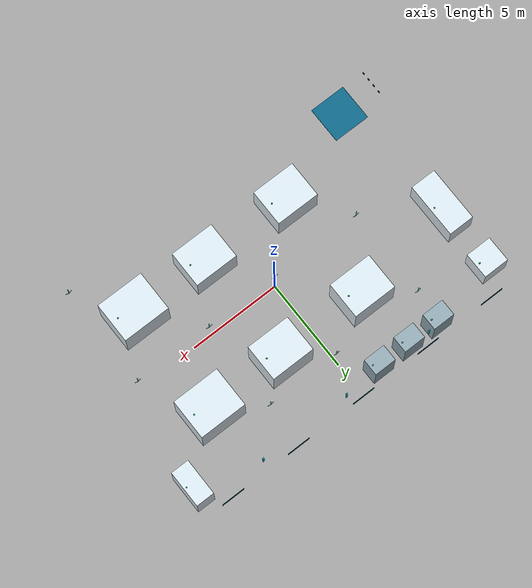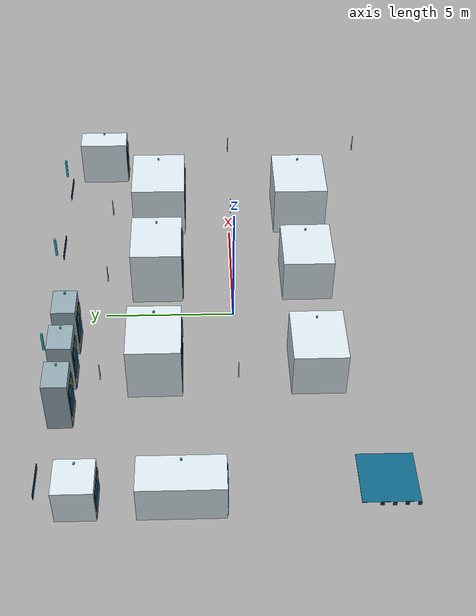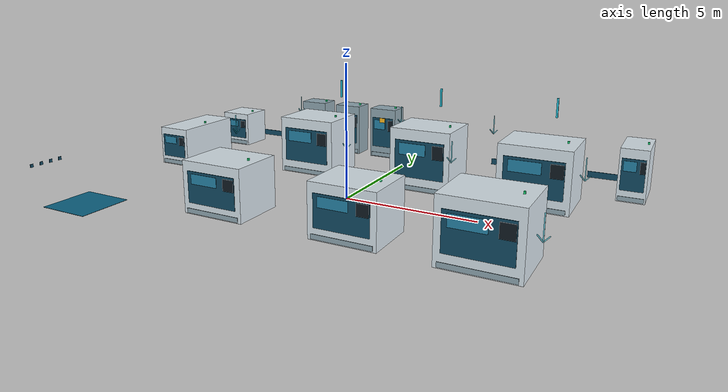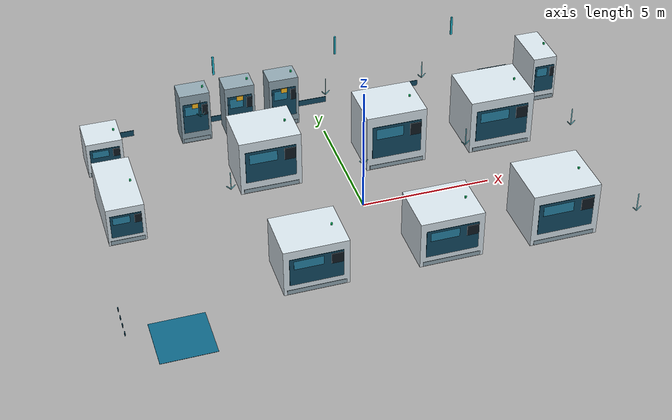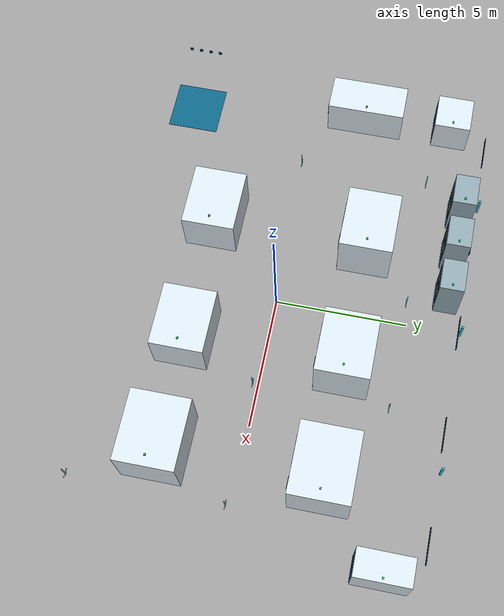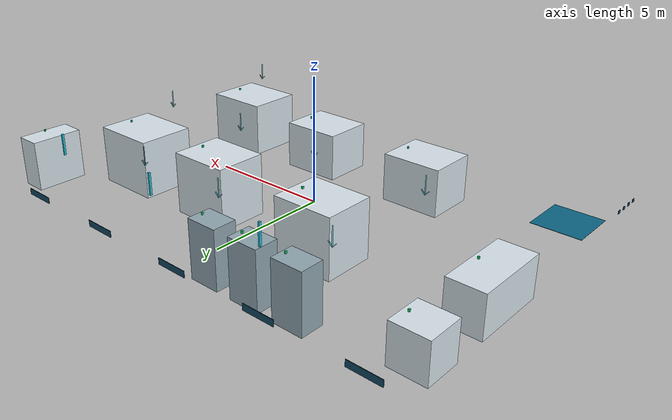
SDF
<sdf version="1.6">
 <world name="cleanroom">
  <model name="service_details">
   <static>true</static>
   <link name="body">
    <visual name="return_-8">
     <pose>-8 6.98 0.17 0 0 0</pose>
     <geometry><box><size>1.3 0.02 0.25</size></box></geometry>
     <material><ambient>0.07 0.29 0.39 1</ambient><diffuse>0.07 0.29 0.39 1</diffuse></material>
     <cast_shadows>false</cast_shadows>
    </visual>
    <visual name="return_-4">
     <pose>-4 6.98 0.17 0 0 0</pose>
     <geometry><box><size>1.3 0.02 0.25</size></box></geometry>
     <material><ambient>0.07 0.29 0.39 1</ambient><diffuse>0.07 0.29 0.39 1</diffuse></material>
     <cast_shadows>false</cast_shadows>
    </visual>
    <visual name="return_0">
     <pose>0 6.98 0.17 0 0 0</pose>
     <geometry><box><size>1.3 0.02 0.25</size></box></geometry>
     <material><ambient>0.07 0.29 0.39 1</ambient><diffuse>0.07 0.29 0.39 1</diffuse></material>
     <cast_shadows>false</cast_shadows>
    </visual>
    <visual name="return_4">
     <pose>4 6.98 0.17 0 0 0</pose>
     <geometry><box><size>1.3 0.02 0.25</size></box></geometry>
     <material><ambient>0.07 0.29 0.39 1</ambient><diffuse>0.07 0.29 0.39 1</diffuse></material>
     <cast_shadows>false</cast_shadows>
    </visual>
    <visual name="return_8">
     <pose>8 6.98 0.17 0 0 0</pose>
     <geometry><box><size>1.3 0.02 0.25</size></box></geometry>
     <material><ambient>0.07 0.29 0.39 1</ambient><diffuse>0.07 0.29 0.39 1</diffuse></material>
     <cast_shadows>false</cast_shadows>
    </visual>
    <visual name="utility_header_-4">
     <pose>-4 6.8 2.8 0 0 0</pose>
     <geometry><box><size>0.07 0.07 0.8</size></box></geometry>
     <material><ambient>0.15 0.8 0.9 1</ambient><diffuse>0.15 0.8 0.9 1</diffuse></material>
     <cast_shadows>false</cast_shadows>
    </visual>
    <visual name="utility_header_1">
     <pose>1 6.8 2.8 0 0 0</pose>
     <geometry><box><size>0.07 0.07 0.8</size></box></geometry>
     <material><ambient>0.15 0.8 0.9 1</ambient><diffuse>0.15 0.8 0.9 1</diffuse></material>
     <cast_shadows>false</cast_shadows>
    </visual>
    <visual name="utility_header_6">
     <pose>6 6.8 2.8 0 0 0</pose>
     <geometry><box><size>0.07 0.07 0.8</size></box></geometry>
     <material><ambient>0.15 0.8 0.9 1</ambient><diffuse>0.15 0.8 0.9 1</diffuse></material>
     <cast_shadows>false</cast_shadows>
    </visual>
    <visual name="air_shower_mat">
     <pose>-8 -5 0.008 0 0 0</pose>
     <geometry><box><size>2 2 0.012</size></box></geometry>
     <material><ambient>0.05 0.4 0.53 1</ambient><diffuse>0.05 0.4 0.53 1</diffuse></material>
     <cast_shadows>false</cast_shadows>
    </visual>
    <visual name="air_shower_nozzle_0">
     <pose>-9.96 -5.6 1.3 0 0 0</pose>
     <geometry><box><size>0.025 0.12 0.12</size></box></geometry>
     <material><ambient>0.07 0.29 0.39 1</ambient><diffuse>0.07 0.29 0.39 1</diffuse></material>
     <cast_shadows>false</cast_shadows>
    </visual>
    <visual name="air_shower_nozzle_1">
     <pose>-9.96 -5.199999999999999 1.3 0 0 0</pose>
     <geometry><box><size>0.025 0.12 0.12</size></box></geometry>
     <material><ambient>0.07 0.29 0.39 1</ambient><diffuse>0.07 0.29 0.39 1</diffuse></material>
     <cast_shadows>false</cast_shadows>
    </visual>
    <visual name="air_shower_nozzle_2">
     <pose>-9.96 -4.8 1.3 0 0 0</pose>
     <geometry><box><size>0.025 0.12 0.12</size></box></geometry>
     <material><ambient>0.07 0.29 0.39 1</ambient><diffuse>0.07 0.29 0.39 1</diffuse></material>
     <cast_shadows>false</cast_shadows>
    </visual>
    <visual name="air_shower_nozzle_3">
     <pose>-9.96 -4.3999999999999995 1.3 0 0 0</pose>
     <geometry><box><size>0.025 0.12 0.12</size></box></geometry>
     <material><ambient>0.07 0.29 0.39 1</ambient><diffuse>0.07 0.29 0.39 1</diffuse></material>
     <cast_shadows>false</cast_shadows>
    </visual>
   </link>
  </model>
  <model name="etch_A">
   <static>true</static>
   <link name="body">
    <collision name="body">
     <pose>-3 3 1.15 0 0 0</pose>
     <geometry><box><size>2.4 2 2.3</size></box></geometry>
    </collision>
    <visual name="body">
     <pose>-3 3 1.15 0 0 0</pose>
     <geometry><box><size>2.4 2 2.3</size></box></geometry>
     <material><ambient>0.85 0.9 0.93 1</ambient><diffuse>0.85 0.9 0.93 1</diffuse></material>
     <cast_shadows>false</cast_shadows>
    </visual>
    <visual name="front_panel">
     <pose>-3 1.988 1.196 0 0 0</pose>
     <geometry><box><size>1.9679999999999997 0.018 1.38</size></box></geometry>
     <material><ambient>0.07 0.29 0.39 1</ambient><diffuse>0.07 0.29 0.39 1</diffuse></material>
     <cast_shadows>false</cast_shadows>
    </visual>
    <visual name="window">
     <pose>-3.288 1.976 1.564 0 0 0</pose>
     <geometry><box><size>1.08 0.018 0.43699999999999994</size></box></geometry>
     <material><ambient>0.15 0.52 0.66 1</ambient><diffuse>0.15 0.52 0.66 1</diffuse></material>
     <cast_shadows>false</cast_shadows>
    </visual>
    <visual name="control_panel">
     <pose>-2.2560000000000002 1.968 1.541 0 0 0</pose>
     <geometry><box><size>0.432 0.02 0.506</size></box></geometry>
     <material><ambient>0.06 0.1 0.13 1</ambient><diffuse>0.06 0.1 0.13 1</diffuse></material>
     <cast_shadows>false</cast_shadows>
    </visual>
    <visual name="status_green">
     <pose>-2.16 3 2.3449999999999998 0 0 0</pose>
     <geometry><box><size>0.06 0.06 0.08</size></box></geometry>
     <material><ambient>0.1 0.9 0.5 1</ambient><diffuse>0.1 0.9 0.5 1</diffuse></material>
     <cast_shadows>false</cast_shadows>
    </visual>
    <visual name="base_plinth">
     <pose>-3 1.988 0.12 0 0 0</pose>
     <geometry><box><size>2.16 0.02 0.17</size></box></geometry>
     <material><ambient>0.57 0.66 0.7 1</ambient><diffuse>0.57 0.66 0.7 1</diffuse></material>
     <cast_shadows>false</cast_shadows>
    </visual>
   </link>
  </model>
  <model name="CVD_B">
   <static>true</static>
   <link name="body">
    <collision name="body">
     <pose>2 3 1.2 0 0 0</pose>
     <geometry><box><size>2.4 2 2.4</size></box></geometry>
    </collision>
    <visual name="body">
     <pose>2 3 1.2 0 0 0</pose>
     <geometry><box><size>2.4 2 2.4</size></box></geometry>
     <material><ambient>0.85 0.9 0.93 1</ambient><diffuse>0.85 0.9 0.93 1</diffuse></material>
     <cast_shadows>false</cast_shadows>
    </visual>
    <visual name="front_panel">
     <pose>2 1.988 1.248 0 0 0</pose>
     <geometry><box><size>1.9679999999999997 0.018 1.44</size></box></geometry>
     <material><ambient>0.07 0.29 0.39 1</ambient><diffuse>0.07 0.29 0.39 1</diffuse></material>
     <cast_shadows>false</cast_shadows>
    </visual>
    <visual name="window">
     <pose>1.712 1.976 1.6320000000000001 0 0 0</pose>
     <geometry><box><size>1.08 0.018 0.45599999999999996</size></box></geometry>
     <material><ambient>0.15 0.52 0.66 1</ambient><diffuse>0.15 0.52 0.66 1</diffuse></material>
     <cast_shadows>false</cast_shadows>
    </visual>
    <visual name="control_panel">
     <pose>2.7439999999999998 1.968 1.608 0 0 0</pose>
     <geometry><box><size>0.432 0.02 0.528</size></box></geometry>
     <material><ambient>0.06 0.1 0.13 1</ambient><diffuse>0.06 0.1 0.13 1</diffuse></material>
     <cast_shadows>false</cast_shadows>
    </visual>
    <visual name="status_green">
     <pose>2.84 3 2.445 0 0 0</pose>
     <geometry><box><size>0.06 0.06 0.08</size></box></geometry>
     <material><ambient>0.1 0.9 0.5 1</ambient><diffuse>0.1 0.9 0.5 1</diffuse></material>
     <cast_shadows>false</cast_shadows>
    </visual>
    <visual name="base_plinth">
     <pose>2 1.988 0.12 0 0 0</pose>
     <geometry><box><size>2.16 0.02 0.17</size></box></geometry>
     <material><ambient>0.57 0.66 0.7 1</ambient><diffuse>0.57 0.66 0.7 1</diffuse></material>
     <cast_shadows>false</cast_shadows>
    </visual>
   </link>
  </model>
  <model name="lithography_C">
   <static>true</static>
   <link name="body">
    <collision name="body">
     <pose>6.3 3 1.15 0 0 0</pose>
     <geometry><box><size>2.6 2.2 2.3</size></box></geometry>
    </collision>
    <visual name="body">
     <pose>6.3 3 1.15 0 0 0</pose>
     <geometry><box><size>2.6 2.2 2.3</size></box></geometry>
     <material><ambient>0.85 0.9 0.93 1</ambient><diffuse>0.85 0.9 0.93 1</diffuse></material>
     <cast_shadows>false</cast_shadows>
    </visual>
    <visual name="front_panel">
     <pose>6.3 1.888 1.196 0 0 0</pose>
     <geometry><box><size>2.132 0.018 1.38</size></box></geometry>
     <material><ambient>0.07 0.29 0.39 1</ambient><diffuse>0.07 0.29 0.39 1</diffuse></material>
     <cast_shadows>false</cast_shadows>
    </visual>
    <visual name="window">
     <pose>5.9879999999999995 1.876 1.564 0 0 0</pose>
     <geometry><box><size>1.1700000000000002 0.018 0.43699999999999994</size></box></geometry>
     <material><ambient>0.15 0.52 0.66 1</ambient><diffuse>0.15 0.52 0.66 1</diffuse></material>
     <cast_shadows>false</cast_shadows>
    </visual>
    <visual name="control_panel">
     <pose>7.106 1.8679999999999999 1.541 0 0 0</pose>
     <geometry><box><size>0.46799999999999997 0.02 0.506</size></box></geometry>
     <material><ambient>0.06 0.1 0.13 1</ambient><diffuse>0.06 0.1 0.13 1</diffuse></material>
     <cast_shadows>false</cast_shadows>
    </visual>
    <visual name="status_green">
     <pose>7.21 3 2.3449999999999998 0 0 0</pose>
     <geometry><box><size>0.06 0.06 0.08</size></box></geometry>
     <material><ambient>0.1 0.9 0.5 1</ambient><diffuse>0.1 0.9 0.5 1</diffuse></material>
     <cast_shadows>false</cast_shadows>
    </visual>
    <visual name="base_plinth">
     <pose>6.3 1.888 0.12 0 0 0</pose>
     <geometry><box><size>2.3400000000000003 0.02 0.17</size></box></geometry>
     <material><ambient>0.57 0.66 0.7 1</ambient><diffuse>0.57 0.66 0.7 1</diffuse></material>
     <cast_shadows>false</cast_shadows>
    </visual>
   </link>
  </model>
  <model name="wet_bench_D">
   <static>true</static>
   <link name="body">
    <collision name="body">
     <pose>-3 -3 0.95 0 0 0</pose>
     <geometry><box><size>2.4 2 1.9</size></box></geometry>
    </collision>
    <visual name="body">
     <pose>-3 -3 0.95 0 0 0</pose>
     <geometry><box><size>2.4 2 1.9</size></box></geometry>
     <material><ambient>0.85 0.9 0.93 1</ambient><diffuse>0.85 0.9 0.93 1</diffuse></material>
     <cast_shadows>false</cast_shadows>
    </visual>
    <visual name="front_panel">
     <pose>-3 -4.012 0.988 0 0 0</pose>
     <geometry><box><size>1.9679999999999997 0.018 1.14</size></box></geometry>
     <material><ambient>0.07 0.29 0.39 1</ambient><diffuse>0.07 0.29 0.39 1</diffuse></material>
     <cast_shadows>false</cast_shadows>
    </visual>
    <visual name="window">
     <pose>-3.288 -4.023999999999999 1.292 0 0 0</pose>
     <geometry><box><size>1.08 0.018 0.361</size></box></geometry>
     <material><ambient>0.15 0.52 0.66 1</ambient><diffuse>0.15 0.52 0.66 1</diffuse></material>
     <cast_shadows>false</cast_shadows>
    </visual>
    <visual name="control_panel">
     <pose>-2.2560000000000002 -4.031999999999999 1.273 0 0 0</pose>
     <geometry><box><size>0.432 0.02 0.418</size></box></geometry>
     <material><ambient>0.06 0.1 0.13 1</ambient><diffuse>0.06 0.1 0.13 1</diffuse></material>
     <cast_shadows>false</cast_shadows>
    </visual>
    <visual name="status_green">
     <pose>-2.16 -3 1.9449999999999998 0 0 0</pose>
     <geometry><box><size>0.06 0.06 0.08</size></box></geometry>
     <material><ambient>0.1 0.9 0.5 1</ambient><diffuse>0.1 0.9 0.5 1</diffuse></material>
     <cast_shadows>false</cast_shadows>
    </visual>
    <visual name="base_plinth">
     <pose>-3 -4.012 0.12 0 0 0</pose>
     <geometry><box><size>2.16 0.02 0.17</size></box></geometry>
     <material><ambient>0.57 0.66 0.7 1</ambient><diffuse>0.57 0.66 0.7 1</diffuse></material>
     <cast_shadows>false</cast_shadows>
    </visual>
   </link>
  </model>
  <model name="metrology_E">
   <static>true</static>
   <link name="body">
    <collision name="body">
     <pose>2 -3 0.95 0 0 0</pose>
     <geometry><box><size>2.4 2 1.9</size></box></geometry>
    </collision>
    <visual name="body">
     <pose>2 -3 0.95 0 0 0</pose>
     <geometry><box><size>2.4 2 1.9</size></box></geometry>
     <material><ambient>0.85 0.9 0.93 1</ambient><diffuse>0.85 0.9 0.93 1</diffuse></material>
     <cast_shadows>false</cast_shadows>
    </visual>
    <visual name="front_panel">
     <pose>2 -4.012 0.988 0 0 0</pose>
     <geometry><box><size>1.9679999999999997 0.018 1.14</size></box></geometry>
     <material><ambient>0.07 0.29 0.39 1</ambient><diffuse>0.07 0.29 0.39 1</diffuse></material>
     <cast_shadows>false</cast_shadows>
    </visual>
    <visual name="window">
     <pose>1.712 -4.023999999999999 1.292 0 0 0</pose>
     <geometry><box><size>1.08 0.018 0.361</size></box></geometry>
     <material><ambient>0.15 0.52 0.66 1</ambient><diffuse>0.15 0.52 0.66 1</diffuse></material>
     <cast_shadows>false</cast_shadows>
    </visual>
    <visual name="control_panel">
     <pose>2.7439999999999998 -4.031999999999999 1.273 0 0 0</pose>
     <geometry><box><size>0.432 0.02 0.418</size></box></geometry>
     <material><ambient>0.06 0.1 0.13 1</ambient><diffuse>0.06 0.1 0.13 1</diffuse></material>
     <cast_shadows>false</cast_shadows>
    </visual>
    <visual name="status_green">
     <pose>2.84 -3 1.9449999999999998 0 0 0</pose>
     <geometry><box><size>0.06 0.06 0.08</size></box></geometry>
     <material><ambient>0.1 0.9 0.5 1</ambient><diffuse>0.1 0.9 0.5 1</diffuse></material>
     <cast_shadows>false</cast_shadows>
    </visual>
    <visual name="base_plinth">
     <pose>2 -4.012 0.12 0 0 0</pose>
     <geometry><box><size>2.16 0.02 0.17</size></box></geometry>
     <material><ambient>0.57 0.66 0.7 1</ambient><diffuse>0.57 0.66 0.7 1</diffuse></material>
     <cast_shadows>false</cast_shadows>
    </visual>
   </link>
  </model>
  <model name="process_F">
   <static>true</static>
   <link name="body">
    <collision name="body">
     <pose>6.3 -3 1.1 0 0 0</pose>
     <geometry><box><size>2.6 2.2 2.2</size></box></geometry>
    </collision>
    <visual name="body">
     <pose>6.3 -3 1.1 0 0 0</pose>
     <geometry><box><size>2.6 2.2 2.2</size></box></geometry>
     <material><ambient>0.85 0.9 0.93 1</ambient><diffuse>0.85 0.9 0.93 1</diffuse></material>
     <cast_shadows>false</cast_shadows>
    </visual>
    <visual name="front_panel">
     <pose>6.3 -4.111999999999999 1.1440000000000001 0 0 0</pose>
     <geometry><box><size>2.132 0.018 1.32</size></box></geometry>
     <material><ambient>0.07 0.29 0.39 1</ambient><diffuse>0.07 0.29 0.39 1</diffuse></material>
     <cast_shadows>false</cast_shadows>
    </visual>
    <visual name="window">
     <pose>5.9879999999999995 -4.123999999999999 1.4960000000000002 0 0 0</pose>
     <geometry><box><size>1.1700000000000002 0.018 0.41800000000000004</size></box></geometry>
     <material><ambient>0.15 0.52 0.66 1</ambient><diffuse>0.15 0.52 0.66 1</diffuse></material>
     <cast_shadows>false</cast_shadows>
    </visual>
    <visual name="control_panel">
     <pose>7.106 -4.131999999999999 1.4740000000000002 0 0 0</pose>
     <geometry><box><size>0.46799999999999997 0.02 0.48400000000000004</size></box></geometry>
     <material><ambient>0.06 0.1 0.13 1</ambient><diffuse>0.06 0.1 0.13 1</diffuse></material>
     <cast_shadows>false</cast_shadows>
    </visual>
    <visual name="status_green">
     <pose>7.21 -3 2.245 0 0 0</pose>
     <geometry><box><size>0.06 0.06 0.08</size></box></geometry>
     <material><ambient>0.1 0.9 0.5 1</ambient><diffuse>0.1 0.9 0.5 1</diffuse></material>
     <cast_shadows>false</cast_shadows>
    </visual>
    <visual name="base_plinth">
     <pose>6.3 -4.111999999999999 0.12 0 0 0</pose>
     <geometry><box><size>2.3400000000000003 0.02 0.17</size></box></geometry>
     <material><ambient>0.57 0.66 0.7 1</ambient><diffuse>0.57 0.66 0.7 1</diffuse></material>
     <cast_shadows>false</cast_shadows>
    </visual>
   </link>
  </model>
  <model name="gas_cabinet_1">
   <static>true</static>
   <link name="body">
    <collision name="body">
     <pose>-5 6.35 1.1 0 0 0</pose>
     <geometry><box><size>1.2 0.9 2.2</size></box></geometry>
    </collision>
    <visual name="body">
     <pose>-5 6.35 1.1 0 0 0</pose>
     <geometry><box><size>1.2 0.9 2.2</size></box></geometry>
     <material><ambient>0.57 0.66 0.7 1</ambient><diffuse>0.57 0.66 0.7 1</diffuse></material>
     <cast_shadows>false</cast_shadows>
    </visual>
    <visual name="front_panel">
     <pose>-5 5.888 1.1440000000000001 0 0 0</pose>
     <geometry><box><size>0.9839999999999999 0.018 1.32</size></box></geometry>
     <material><ambient>0.07 0.29 0.39 1</ambient><diffuse>0.07 0.29 0.39 1</diffuse></material>
     <cast_shadows>false</cast_shadows>
    </visual>
    <visual name="window">
     <pose>-5.144 5.876 1.4960000000000002 0 0 0</pose>
     <geometry><box><size>0.54 0.018 0.41800000000000004</size></box></geometry>
     <material><ambient>0.15 0.52 0.66 1</ambient><diffuse>0.15 0.52 0.66 1</diffuse></material>
     <cast_shadows>false</cast_shadows>
    </visual>
    <visual name="control_panel">
     <pose>-4.628 5.868 1.4740000000000002 0 0 0</pose>
     <geometry><box><size>0.216 0.02 0.48400000000000004</size></box></geometry>
     <material><ambient>0.06 0.1 0.13 1</ambient><diffuse>0.06 0.1 0.13 1</diffuse></material>
     <cast_shadows>false</cast_shadows>
    </visual>
    <visual name="status_green">
     <pose>-4.58 6.35 2.245 0 0 0</pose>
     <geometry><box><size>0.06 0.06 0.08</size></box></geometry>
     <material><ambient>0.1 0.9 0.5 1</ambient><diffuse>0.1 0.9 0.5 1</diffuse></material>
     <cast_shadows>false</cast_shadows>
    </visual>
    <visual name="base_plinth">
     <pose>-5 5.888 0.12 0 0 0</pose>
     <geometry><box><size>1.08 0.02 0.17</size></box></geometry>
     <material><ambient>0.57 0.66 0.7 1</ambient><diffuse>0.57 0.66 0.7 1</diffuse></material>
     <cast_shadows>false</cast_shadows>
    </visual>
    <visual name="hazard_plate">
     <pose>-5 5.8629999999999995 1.7 0 0 0</pose>
     <geometry><box><size>0.25 0.01 0.2</size></box></geometry>
     <material><ambient>1 .74 .12 1</ambient><diffuse>1 .74 .12 1</diffuse></material>
     <cast_shadows>false</cast_shadows>
    </visual>
   </link>
  </model>
  <model name="gas_cabinet_2">
   <static>true</static>
   <link name="body">
    <collision name="body">
     <pose>-3.2 6.35 1.1 0 0 0</pose>
     <geometry><box><size>1.2 0.9 2.2</size></box></geometry>
    </collision>
    <visual name="body">
     <pose>-3.2 6.35 1.1 0 0 0</pose>
     <geometry><box><size>1.2 0.9 2.2</size></box></geometry>
     <material><ambient>0.57 0.66 0.7 1</ambient><diffuse>0.57 0.66 0.7 1</diffuse></material>
     <cast_shadows>false</cast_shadows>
    </visual>
    <visual name="front_panel">
     <pose>-3.2 5.888 1.1440000000000001 0 0 0</pose>
     <geometry><box><size>0.9839999999999999 0.018 1.32</size></box></geometry>
     <material><ambient>0.07 0.29 0.39 1</ambient><diffuse>0.07 0.29 0.39 1</diffuse></material>
     <cast_shadows>false</cast_shadows>
    </visual>
    <visual name="window">
     <pose>-3.3440000000000003 5.876 1.4960000000000002 0 0 0</pose>
     <geometry><box><size>0.54 0.018 0.41800000000000004</size></box></geometry>
     <material><ambient>0.15 0.52 0.66 1</ambient><diffuse>0.15 0.52 0.66 1</diffuse></material>
     <cast_shadows>false</cast_shadows>
    </visual>
    <visual name="control_panel">
     <pose>-2.8280000000000003 5.868 1.4740000000000002 0 0 0</pose>
     <geometry><box><size>0.216 0.02 0.48400000000000004</size></box></geometry>
     <material><ambient>0.06 0.1 0.13 1</ambient><diffuse>0.06 0.1 0.13 1</diffuse></material>
     <cast_shadows>false</cast_shadows>
    </visual>
    <visual name="status_green">
     <pose>-2.7800000000000002 6.35 2.245 0 0 0</pose>
     <geometry><box><size>0.06 0.06 0.08</size></box></geometry>
     <material><ambient>0.1 0.9 0.5 1</ambient><diffuse>0.1 0.9 0.5 1</diffuse></material>
     <cast_shadows>false</cast_shadows>
    </visual>
    <visual name="base_plinth">
     <pose>-3.2 5.888 0.12 0 0 0</pose>
     <geometry><box><size>1.08 0.02 0.17</size></box></geometry>
     <material><ambient>0.57 0.66 0.7 1</ambient><diffuse>0.57 0.66 0.7 1</diffuse></material>
     <cast_shadows>false</cast_shadows>
    </visual>
    <visual name="hazard_plate">
     <pose>-3.2 5.8629999999999995 1.7 0 0 0</pose>
     <geometry><box><size>0.25 0.01 0.2</size></box></geometry>
     <material><ambient>1 .74 .12 1</ambient><diffuse>1 .74 .12 1</diffuse></material>
     <cast_shadows>false</cast_shadows>
    </visual>
   </link>
  </model>
  <model name="gas_cabinet_3">
   <static>true</static>
   <link name="body">
    <collision name="body">
     <pose>-1.4 6.35 1.1 0 0 0</pose>
     <geometry><box><size>1.2 0.9 2.2</size></box></geometry>
    </collision>
    <visual name="body">
     <pose>-1.4 6.35 1.1 0 0 0</pose>
     <geometry><box><size>1.2 0.9 2.2</size></box></geometry>
     <material><ambient>0.57 0.66 0.7 1</ambient><diffuse>0.57 0.66 0.7 1</diffuse></material>
     <cast_shadows>false</cast_shadows>
    </visual>
    <visual name="front_panel">
     <pose>-1.4 5.888 1.1440000000000001 0 0 0</pose>
     <geometry><box><size>0.9839999999999999 0.018 1.32</size></box></geometry>
     <material><ambient>0.07 0.29 0.39 1</ambient><diffuse>0.07 0.29 0.39 1</diffuse></material>
     <cast_shadows>false</cast_shadows>
    </visual>
    <visual name="window">
     <pose>-1.5439999999999998 5.876 1.4960000000000002 0 0 0</pose>
     <geometry><box><size>0.54 0.018 0.41800000000000004</size></box></geometry>
     <material><ambient>0.15 0.52 0.66 1</ambient><diffuse>0.15 0.52 0.66 1</diffuse></material>
     <cast_shadows>false</cast_shadows>
    </visual>
    <visual name="control_panel">
     <pose>-1.028 5.868 1.4740000000000002 0 0 0</pose>
     <geometry><box><size>0.216 0.02 0.48400000000000004</size></box></geometry>
     <material><ambient>0.06 0.1 0.13 1</ambient><diffuse>0.06 0.1 0.13 1</diffuse></material>
     <cast_shadows>false</cast_shadows>
    </visual>
    <visual name="status_green">
     <pose>-0.98 6.35 2.245 0 0 0</pose>
     <geometry><box><size>0.06 0.06 0.08</size></box></geometry>
     <material><ambient>0.1 0.9 0.5 1</ambient><diffuse>0.1 0.9 0.5 1</diffuse></material>
     <cast_shadows>false</cast_shadows>
    </visual>
    <visual name="base_plinth">
     <pose>-1.4 5.888 0.12 0 0 0</pose>
     <geometry><box><size>1.08 0.02 0.17</size></box></geometry>
     <material><ambient>0.57 0.66 0.7 1</ambient><diffuse>0.57 0.66 0.7 1</diffuse></material>
     <cast_shadows>false</cast_shadows>
    </visual>
    <visual name="hazard_plate">
     <pose>-1.4 5.8629999999999995 1.7 0 0 0</pose>
     <geometry><box><size>0.25 0.01 0.2</size></box></geometry>
     <material><ambient>1 .74 .12 1</ambient><diffuse>1 .74 .12 1</diffuse></material>
     <cast_shadows>false</cast_shadows>
    </visual>
   </link>
  </model>
  <model name="clean_bench">
   <static>true</static>
   <link name="body">
    <collision name="body">
     <pose>-8.8 2 0.8 0 0 0</pose>
     <geometry><box><size>1.4 3 1.6</size></box></geometry>
    </collision>
    <visual name="body">
     <pose>-8.8 2 0.8 0 0 0</pose>
     <geometry><box><size>1.4 3 1.6</size></box></geometry>
     <material><ambient>0.85 0.9 0.93 1</ambient><diffuse>0.85 0.9 0.93 1</diffuse></material>
     <cast_shadows>false</cast_shadows>
    </visual>
    <visual name="front_panel">
     <pose>-8.8 0.488 0.8320000000000001 0 0 0</pose>
     <geometry><box><size>1.148 0.018 0.96</size></box></geometry>
     <material><ambient>0.07 0.29 0.39 1</ambient><diffuse>0.07 0.29 0.39 1</diffuse></material>
     <cast_shadows>false</cast_shadows>
    </visual>
    <visual name="window">
     <pose>-8.968 0.476 1.088 0 0 0</pose>
     <geometry><box><size>0.63 0.018 0.30400000000000005</size></box></geometry>
     <material><ambient>0.15 0.52 0.66 1</ambient><diffuse>0.15 0.52 0.66 1</diffuse></material>
     <cast_shadows>false</cast_shadows>
    </visual>
    <visual name="control_panel">
     <pose>-8.366000000000001 0.46799999999999997 1.072 0 0 0</pose>
     <geometry><box><size>0.252 0.02 0.35200000000000004</size></box></geometry>
     <material><ambient>0.06 0.1 0.13 1</ambient><diffuse>0.06 0.1 0.13 1</diffuse></material>
     <cast_shadows>false</cast_shadows>
    </visual>
    <visual name="status_green">
     <pose>-8.31 2 1.645 0 0 0</pose>
     <geometry><box><size>0.06 0.06 0.08</size></box></geometry>
     <material><ambient>0.1 0.9 0.5 1</ambient><diffuse>0.1 0.9 0.5 1</diffuse></material>
     <cast_shadows>false</cast_shadows>
    </visual>
    <visual name="base_plinth">
     <pose>-8.8 0.488 0.12 0 0 0</pose>
     <geometry><box><size>1.26 0.02 0.17</size></box></geometry>
     <material><ambient>0.57 0.66 0.7 1</ambient><diffuse>0.57 0.66 0.7 1</diffuse></material>
     <cast_shadows>false</cast_shadows>
    </visual>
   </link>
  </model>
  <model name="pass_box">
   <static>true</static>
   <link name="body">
    <collision name="body">
     <pose>-8.8 5.5 0.75 0 0 0</pose>
     <geometry><box><size>1.4 1.4 1.5</size></box></geometry>
    </collision>
    <visual name="body">
     <pose>-8.8 5.5 0.75 0 0 0</pose>
     <geometry><box><size>1.4 1.4 1.5</size></box></geometry>
     <material><ambient>0.85 0.9 0.93 1</ambient><diffuse>0.85 0.9 0.93 1</diffuse></material>
     <cast_shadows>false</cast_shadows>
    </visual>
    <visual name="front_panel">
     <pose>-8.8 4.788 0.78 0 0 0</pose>
     <geometry><box><size>1.148 0.018 0.8999999999999999</size></box></geometry>
     <material><ambient>0.07 0.29 0.39 1</ambient><diffuse>0.07 0.29 0.39 1</diffuse></material>
     <cast_shadows>false</cast_shadows>
    </visual>
    <visual name="window">
     <pose>-8.968 4.776000000000001 1.02 0 0 0</pose>
     <geometry><box><size>0.63 0.018 0.28500000000000003</size></box></geometry>
     <material><ambient>0.15 0.52 0.66 1</ambient><diffuse>0.15 0.52 0.66 1</diffuse></material>
     <cast_shadows>false</cast_shadows>
    </visual>
    <visual name="control_panel">
     <pose>-8.366000000000001 4.768000000000001 1.0050000000000001 0 0 0</pose>
     <geometry><box><size>0.252 0.02 0.33</size></box></geometry>
     <material><ambient>0.06 0.1 0.13 1</ambient><diffuse>0.06 0.1 0.13 1</diffuse></material>
     <cast_shadows>false</cast_shadows>
    </visual>
    <visual name="status_green">
     <pose>-8.31 5.5 1.545 0 0 0</pose>
     <geometry><box><size>0.06 0.06 0.08</size></box></geometry>
     <material><ambient>0.1 0.9 0.5 1</ambient><diffuse>0.1 0.9 0.5 1</diffuse></material>
     <cast_shadows>false</cast_shadows>
    </visual>
    <visual name="base_plinth">
     <pose>-8.8 4.788 0.12 0 0 0</pose>
     <geometry><box><size>1.26 0.02 0.17</size></box></geometry>
     <material><ambient>0.57 0.66 0.7 1</ambient><diffuse>0.57 0.66 0.7 1</diffuse></material>
     <cast_shadows>false</cast_shadows>
    </visual>
   </link>
  </model>
  <model name="utility_rack">
   <static>true</static>
   <link name="body">
    <collision name="body">
     <pose>9.25 5.5 1 0 0 0</pose>
     <geometry><box><size>1 2 2</size></box></geometry>
    </collision>
    <visual name="body">
     <pose>9.25 5.5 1 0 0 0</pose>
     <geometry><box><size>1 2 2</size></box></geometry>
     <material><ambient>0.85 0.9 0.93 1</ambient><diffuse>0.85 0.9 0.93 1</diffuse></material>
     <cast_shadows>false</cast_shadows>
    </visual>
    <visual name="front_panel">
     <pose>9.25 4.488 1.04 0 0 0</pose>
     <geometry><box><size>0.82 0.018 1.2</size></box></geometry>
     <material><ambient>0.07 0.29 0.39 1</ambient><diffuse>0.07 0.29 0.39 1</diffuse></material>
     <cast_shadows>false</cast_shadows>
    </visual>
    <visual name="window">
     <pose>9.13 4.476000000000001 1.36 0 0 0</pose>
     <geometry><box><size>0.45 0.018 0.38</size></box></geometry>
     <material><ambient>0.15 0.52 0.66 1</ambient><diffuse>0.15 0.52 0.66 1</diffuse></material>
     <cast_shadows>false</cast_shadows>
    </visual>
    <visual name="control_panel">
     <pose>9.56 4.468000000000001 1.34 0 0 0</pose>
     <geometry><box><size>0.18 0.02 0.44</size></box></geometry>
     <material><ambient>0.06 0.1 0.13 1</ambient><diffuse>0.06 0.1 0.13 1</diffuse></material>
     <cast_shadows>false</cast_shadows>
    </visual>
    <visual name="status_green">
     <pose>9.6 5.5 2.045 0 0 0</pose>
     <geometry><box><size>0.06 0.06 0.08</size></box></geometry>
     <material><ambient>0.1 0.9 0.5 1</ambient><diffuse>0.1 0.9 0.5 1</diffuse></material>
     <cast_shadows>false</cast_shadows>
    </visual>
    <visual name="base_plinth">
     <pose>9.25 4.488 0.12 0 0 0</pose>
     <geometry><box><size>0.9 0.02 0.17</size></box></geometry>
     <material><ambient>0.57 0.66 0.7 1</ambient><diffuse>0.57 0.66 0.7 1</diffuse></material>
     <cast_shadows>false</cast_shadows>
    </visual>
   </link>
  </model>
  <model name="downflow_visual_only">
   <static>true</static>
   <link name="body">
    <visual name="shaft_0">
     <pose>-5 0 2.3 0 0 0</pose>
     <geometry><box><size>0.025 0.025 0.7</size></box></geometry>
     <material><ambient>0.15 0.8 0.9 1</ambient><diffuse>0.15 0.8 0.9 1</diffuse></material>
     <transparency>0.45</transparency>
     <cast_shadows>false</cast_shadows>
    </visual>
    <visual name="head_0_-1">
     <pose>-5.08 0 2 0 -0.75 0</pose>
     <geometry><box><size>0.025 0.025 0.23</size></box></geometry>
     <material><ambient>0.15 0.8 0.9 1</ambient><diffuse>0.15 0.8 0.9 1</diffuse></material>
     <transparency>0.45</transparency>
     <cast_shadows>false</cast_shadows>
    </visual>
    <visual name="head_0_1">
     <pose>-4.92 0 2 0 0.75 0</pose>
     <geometry><box><size>0.025 0.025 0.23</size></box></geometry>
     <material><ambient>0.15 0.8 0.9 1</ambient><diffuse>0.15 0.8 0.9 1</diffuse></material>
     <transparency>0.45</transparency>
     <cast_shadows>false</cast_shadows>
    </visual>
    <visual name="shaft_1">
     <pose>0 0 2.3 0 0 0</pose>
     <geometry><box><size>0.025 0.025 0.7</size></box></geometry>
     <material><ambient>0.15 0.8 0.9 1</ambient><diffuse>0.15 0.8 0.9 1</diffuse></material>
     <transparency>0.45</transparency>
     <cast_shadows>false</cast_shadows>
    </visual>
    <visual name="head_1_-1">
     <pose>-0.08 0 2 0 -0.75 0</pose>
     <geometry><box><size>0.025 0.025 0.23</size></box></geometry>
     <material><ambient>0.15 0.8 0.9 1</ambient><diffuse>0.15 0.8 0.9 1</diffuse></material>
     <transparency>0.45</transparency>
     <cast_shadows>false</cast_shadows>
    </visual>
    <visual name="head_1_1">
     <pose>0.08 0 2 0 0.75 0</pose>
     <geometry><box><size>0.025 0.025 0.23</size></box></geometry>
     <material><ambient>0.15 0.8 0.9 1</ambient><diffuse>0.15 0.8 0.9 1</diffuse></material>
     <transparency>0.45</transparency>
     <cast_shadows>false</cast_shadows>
    </visual>
    <visual name="shaft_2">
     <pose>4 0 2.3 0 0 0</pose>
     <geometry><box><size>0.025 0.025 0.7</size></box></geometry>
     <material><ambient>0.15 0.8 0.9 1</ambient><diffuse>0.15 0.8 0.9 1</diffuse></material>
     <transparency>0.45</transparency>
     <cast_shadows>false</cast_shadows>
    </visual>
    <visual name="head_2_-1">
     <pose>3.92 0 2 0 -0.75 0</pose>
     <geometry><box><size>0.025 0.025 0.23</size></box></geometry>
     <material><ambient>0.15 0.8 0.9 1</ambient><diffuse>0.15 0.8 0.9 1</diffuse></material>
     <transparency>0.45</transparency>
     <cast_shadows>false</cast_shadows>
    </visual>
    <visual name="head_2_1">
     <pose>4.08 0 2 0 0.75 0</pose>
     <geometry><box><size>0.025 0.025 0.23</size></box></geometry>
     <material><ambient>0.15 0.8 0.9 1</ambient><diffuse>0.15 0.8 0.9 1</diffuse></material>
     <transparency>0.45</transparency>
     <cast_shadows>false</cast_shadows>
    </visual>
    <visual name="shaft_3">
     <pose>8.3 0 2.3 0 0 0</pose>
     <geometry><box><size>0.025 0.025 0.7</size></box></geometry>
     <material><ambient>0.15 0.8 0.9 1</ambient><diffuse>0.15 0.8 0.9 1</diffuse></material>
     <transparency>0.45</transparency>
     <cast_shadows>false</cast_shadows>
    </visual>
    <visual name="head_3_-1">
     <pose>8.22 0 2 0 -0.75 0</pose>
     <geometry><box><size>0.025 0.025 0.23</size></box></geometry>
     <material><ambient>0.15 0.8 0.9 1</ambient><diffuse>0.15 0.8 0.9 1</diffuse></material>
     <transparency>0.45</transparency>
     <cast_shadows>false</cast_shadows>
    </visual>
    <visual name="head_3_1">
     <pose>8.38 0 2 0 0.75 0</pose>
     <geometry><box><size>0.025 0.025 0.23</size></box></geometry>
     <material><ambient>0.15 0.8 0.9 1</ambient><diffuse>0.15 0.8 0.9 1</diffuse></material>
     <transparency>0.45</transparency>
     <cast_shadows>false</cast_shadows>
    </visual>
    <visual name="shaft_4">
     <pose>-5 4.8 2.3 0 0 0</pose>
     <geometry><box><size>0.025 0.025 0.7</size></box></geometry>
     <material><ambient>0.15 0.8 0.9 1</ambient><diffuse>0.15 0.8 0.9 1</diffuse></material>
     <transparency>0.45</transparency>
     <cast_shadows>false</cast_shadows>
    </visual>
    <visual name="head_4_-1">
     <pose>-5.08 4.8 2 0 -0.75 0</pose>
     <geometry><box><size>0.025 0.025 0.23</size></box></geometry>
     <material><ambient>0.15 0.8 0.9 1</ambient><diffuse>0.15 0.8 0.9 1</diffuse></material>
     <transparency>0.45</transparency>
     <cast_shadows>false</cast_shadows>
    </visual>
    <visual name="head_4_1">
     <pose>-4.92 4.8 2 0 0.75 0</pose>
     <geometry><box><size>0.025 0.025 0.23</size></box></geometry>
     <material><ambient>0.15 0.8 0.9 1</ambient><diffuse>0.15 0.8 0.9 1</diffuse></material>
     <transparency>0.45</transparency>
     <cast_shadows>false</cast_shadows>
    </visual>
    <visual name="shaft_5">
     <pose>0 4.8 2.3 0 0 0</pose>
     <geometry><box><size>0.025 0.025 0.7</size></box></geometry>
     <material><ambient>0.15 0.8 0.9 1</ambient><diffuse>0.15 0.8 0.9 1</diffuse></material>
     <transparency>0.45</transparency>
     <cast_shadows>false</cast_shadows>
    </visual>
    <visual name="head_5_-1">
     <pose>-0.08 4.8 2 0 -0.75 0</pose>
     <geometry><box><size>0.025 0.025 0.23</size></box></geometry>
     <material><ambient>0.15 0.8 0.9 1</ambient><diffuse>0.15 0.8 0.9 1</diffuse></material>
     <transparency>0.45</transparency>
     <cast_shadows>false</cast_shadows>
    </visual>
    <visual name="head_5_1">
     <pose>0.08 4.8 2 0 0.75 0</pose>
     <geometry><box><size>0.025 0.025 0.23</size></box></geometry>
     <material><ambient>0.15 0.8 0.9 1</ambient><diffuse>0.15 0.8 0.9 1</diffuse></material>
     <transparency>0.45</transparency>
     <cast_shadows>false</cast_shadows>
    </visual>
    <visual name="shaft_6">
     <pose>4 4.8 2.3 0 0 0</pose>
     <geometry><box><size>0.025 0.025 0.7</size></box></geometry>
     <material><ambient>0.15 0.8 0.9 1</ambient><diffuse>0.15 0.8 0.9 1</diffuse></material>
     <transparency>0.45</transparency>
     <cast_shadows>false</cast_shadows>
    </visual>
    <visual name="head_6_-1">
     <pose>3.92 4.8 2 0 -0.75 0</pose>
     <geometry><box><size>0.025 0.025 0.23</size></box></geometry>
     <material><ambient>0.15 0.8 0.9 1</ambient><diffuse>0.15 0.8 0.9 1</diffuse></material>
     <transparency>0.45</transparency>
     <cast_shadows>false</cast_shadows>
    </visual>
    <visual name="head_6_1">
     <pose>4.08 4.8 2 0 0.75 0</pose>
     <geometry><box><size>0.025 0.025 0.23</size></box></geometry>
     <material><ambient>0.15 0.8 0.9 1</ambient><diffuse>0.15 0.8 0.9 1</diffuse></material>
     <transparency>0.45</transparency>
     <cast_shadows>false</cast_shadows>
    </visual>
    <visual name="shaft_7">
     <pose>8.3 -5.5 2.3 0 0 0</pose>
     <geometry><box><size>0.025 0.025 0.7</size></box></geometry>
     <material><ambient>0.15 0.8 0.9 1</ambient><diffuse>0.15 0.8 0.9 1</diffuse></material>
     <transparency>0.45</transparency>
     <cast_shadows>false</cast_shadows>
    </visual>
    <visual name="head_7_-1">
     <pose>8.22 -5.5 2 0 -0.75 0</pose>
     <geometry><box><size>0.025 0.025 0.23</size></box></geometry>
     <material><ambient>0.15 0.8 0.9 1</ambient><diffuse>0.15 0.8 0.9 1</diffuse></material>
     <transparency>0.45</transparency>
     <cast_shadows>false</cast_shadows>
    </visual>
    <visual name="head_7_1">
     <pose>8.38 -5.5 2 0 0.75 0</pose>
     <geometry><box><size>0.025 0.025 0.23</size></box></geometry>
     <material><ambient>0.15 0.8 0.9 1</ambient><diffuse>0.15 0.8 0.9 1</diffuse></material>
     <transparency>0.45</transparency>
     <cast_shadows>false</cast_shadows>
    </visual>
   </link>
  </model>
 </world>
</sdf>
